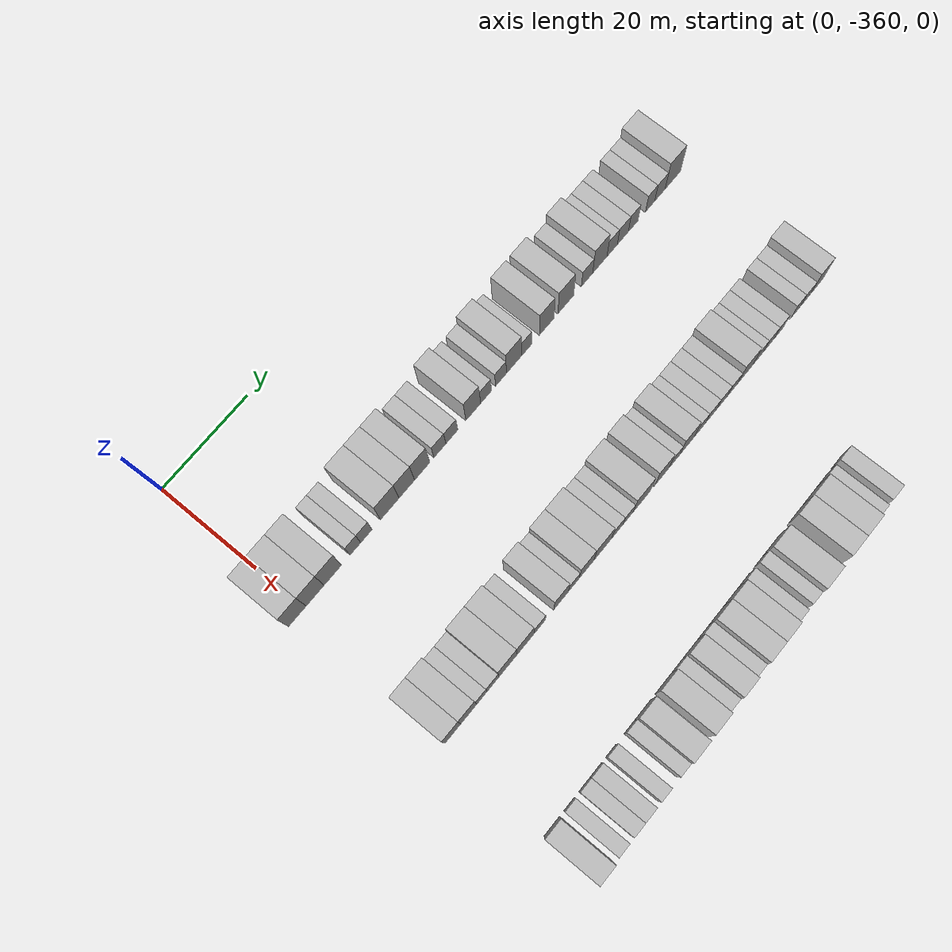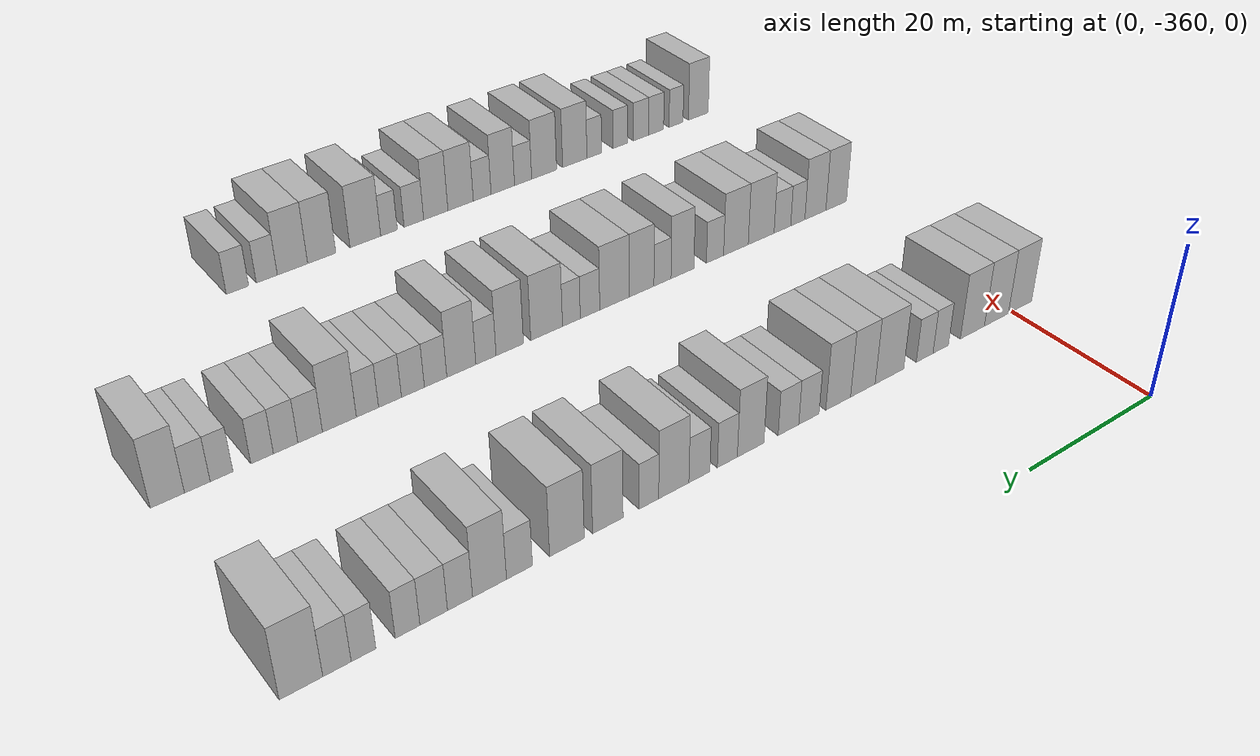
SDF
<sdf version="1.6">
 <world name="default">
  <model name="building_26">
   <static>1</static>
   <pose>25.0000 -361.4323 0 0.000000 0.000000 0.000000</pose>
   <link name="link">
    <pose>0 0 4.50 0 0 0</pose>
    <collision name="collision"><geometry><box><size>10.0000 4.1142 9.0000</size></box></geometry></collision>
    <visual name="visual">
     <cast_shadows>0</cast_shadows>
     <geometry><box><size>10.0000 4.1142 9.0000</size></box></geometry>
     <material>
      <script>
       <uri>model://HANNAS_wall/materials/scripts</uri>
       <uri>model://HANNAS_wall/materials/textures</uri>
       <name>vrc/HANNAS_wall</name>
      </script>
     </material>
    </visual>
   </link>
  </model>
  <model name="building_27">
   <static>1</static>
   <pose>25.0000 -357.2893 0 0.000000 0.000000 0.000000</pose>
   <link name="link">
    <pose>0 0 4.50 0 0 0</pose>
    <collision name="collision"><geometry><box><size>10.0000 4.1719 9.0000</size></box></geometry></collision>
    <visual name="visual">
     <cast_shadows>0</cast_shadows>
     <geometry><box><size>10.0000 4.1719 9.0000</size></box></geometry>
     <material>
      <script>
       <uri>model://HANNAS_wall/materials/scripts</uri>
       <uri>model://HANNAS_wall/materials/textures</uri>
       <name>vrc/HANNAS_wall</name>
      </script>
     </material>
    </visual>
   </link>
  </model>
  <model name="building_28">
   <static>1</static>
   <pose>25.0000 -353.1575 0 0.000000 0.000000 0.000000</pose>
   <link name="link">
    <pose>0 0 4.50 0 0 0</pose>
    <collision name="collision"><geometry><box><size>10.0000 4.0917 9.0000</size></box></geometry></collision>
    <visual name="visual">
     <cast_shadows>0</cast_shadows>
     <geometry><box><size>10.0000 4.0917 9.0000</size></box></geometry>
     <material>
      <script>
       <uri>model://HANNAS_wall/materials/scripts</uri>
       <uri>model://HANNAS_wall/materials/textures</uri>
       <name>vrc/HANNAS_wall</name>
      </script>
     </material>
    </visual>
   </link>
  </model>
  <model name="building_29">
   <static>1</static>
   <pose>25.0000 -347.8444 0 0.000000 0.000000 0.000000</pose>
   <link name="link">
    <pose>0 0 3.00 0 0 0</pose>
    <collision name="collision"><geometry><box><size>10.0000 2.5344 6.0000</size></box></geometry></collision>
    <visual name="visual">
     <cast_shadows>0</cast_shadows>
     <geometry><box><size>10.0000 2.5344 6.0000</size></box></geometry>
     <material>
      <script>
       <uri>model://HANNAS_wall/materials/scripts</uri>
       <uri>model://HANNAS_wall/materials/textures</uri>
       <name>vrc/HANNAS_wall</name>
      </script>
     </material>
    </visual>
   </link>
  </model>
  <model name="building_30">
   <static>1</static>
   <pose>25.0000 -345.2162 0 0.000000 0.000000 0.000000</pose>
   <link name="link">
    <pose>0 0 3.00 0 0 0</pose>
    <collision name="collision"><geometry><box><size>10.0000 2.7220 6.0000</size></box></geometry></collision>
    <visual name="visual">
     <cast_shadows>0</cast_shadows>
     <geometry><box><size>10.0000 2.7220 6.0000</size></box></geometry>
     <material>
      <script>
       <uri>model://HANNAS_wall/materials/scripts</uri>
       <uri>model://HANNAS_wall/materials/textures</uri>
       <name>vrc/HANNAS_wall</name>
      </script>
     </material>
    </visual>
   </link>
  </model>
  <model name="building_31">
   <static>1</static>
   <pose>25.0000 -339.6061 0 0.000000 0.000000 0.000000</pose>
   <link name="link">
    <pose>0 0 4.50 0 0 0</pose>
    <collision name="collision"><geometry><box><size>10.0000 4.4983 9.0000</size></box></geometry></collision>
    <visual name="visual">
     <cast_shadows>0</cast_shadows>
     <geometry><box><size>10.0000 4.4983 9.0000</size></box></geometry>
     <material>
      <script>
       <uri>model://HANNAS_wall/materials/scripts</uri>
       <uri>model://HANNAS_wall/materials/textures</uri>
       <name>vrc/HANNAS_wall</name>
      </script>
     </material>
    </visual>
   </link>
  </model>
  <model name="building_32">
   <static>1</static>
   <pose>25.0000 -335.4722 0 0.000000 0.000000 0.000000</pose>
   <link name="link">
    <pose>0 0 4.50 0 0 0</pose>
    <collision name="collision"><geometry><box><size>10.0000 3.7696 9.0000</size></box></geometry></collision>
    <visual name="visual">
     <cast_shadows>0</cast_shadows>
     <geometry><box><size>10.0000 3.7696 9.0000</size></box></geometry>
     <material>
      <script>
       <uri>model://HANNAS_wall/materials/scripts</uri>
       <uri>model://HANNAS_wall/materials/textures</uri>
       <name>vrc/HANNAS_wall</name>
      </script>
     </material>
    </visual>
   </link>
  </model>
  <model name="building_33">
   <static>1</static>
   <pose>25.0000 -331.7244 0 0.000000 0.000000 0.000000</pose>
   <link name="link">
    <pose>0 0 4.50 0 0 0</pose>
    <collision name="collision"><geometry><box><size>10.0000 3.7260 9.0000</size></box></geometry></collision>
    <visual name="visual">
     <cast_shadows>0</cast_shadows>
     <geometry><box><size>10.0000 3.7260 9.0000</size></box></geometry>
     <material>
      <script>
       <uri>model://HANNAS_wall/materials/scripts</uri>
       <uri>model://HANNAS_wall/materials/textures</uri>
       <name>vrc/HANNAS_wall</name>
      </script>
     </material>
    </visual>
   </link>
  </model>
  <model name="building_34">
   <static>1</static>
   <pose>25.0000 -327.3848 0 0.000000 0.000000 0.000000</pose>
   <link name="link">
    <pose>0 0 3.00 0 0 0</pose>
    <collision name="collision"><geometry><box><size>10.0000 2.9531 6.0000</size></box></geometry></collision>
    <visual name="visual">
     <cast_shadows>0</cast_shadows>
     <geometry><box><size>10.0000 2.9531 6.0000</size></box></geometry>
     <material>
      <script>
       <uri>model://HANNAS_wall/materials/scripts</uri>
       <uri>model://HANNAS_wall/materials/textures</uri>
       <name>vrc/HANNAS_wall</name>
      </script>
     </material>
    </visual>
   </link>
  </model>
  <model name="building_35">
   <static>1</static>
   <pose>25.0000 -324.4236 0 0.000000 0.000000 0.000000</pose>
   <link name="link">
    <pose>0 0 3.00 0 0 0</pose>
    <collision name="collision"><geometry><box><size>10.0000 2.9694 6.0000</size></box></geometry></collision>
    <visual name="visual">
     <cast_shadows>0</cast_shadows>
     <geometry><box><size>10.0000 2.9694 6.0000</size></box></geometry>
     <material>
      <script>
       <uri>model://HANNAS_wall/materials/scripts</uri>
       <uri>model://HANNAS_wall/materials/textures</uri>
       <name>vrc/HANNAS_wall</name>
      </script>
     </material>
    </visual>
   </link>
  </model>
  <model name="building_36">
   <static>1</static>
   <pose>25.0000 -319.0870 0 0.000000 0.000000 0.000000</pose>
   <link name="link">
    <pose>0 0 4.50 0 0 0</pose>
    <collision name="collision"><geometry><box><size>10.0000 3.7037 9.0000</size></box></geometry></collision>
    <visual name="visual">
     <cast_shadows>0</cast_shadows>
     <geometry><box><size>10.0000 3.7037 9.0000</size></box></geometry>
     <material>
      <script>
       <uri>model://HANNAS_wall/materials/scripts</uri>
       <uri>model://HANNAS_wall/materials/textures</uri>
       <name>vrc/HANNAS_wall</name>
      </script>
     </material>
    </visual>
   </link>
  </model>
  <model name="building_37">
   <static>1</static>
   <pose>25.0000 -315.8735 0 0.000000 0.000000 0.000000</pose>
   <link name="link">
    <pose>0 0 3.00 0 0 0</pose>
    <collision name="collision"><geometry><box><size>10.0000 2.7234 6.0000</size></box></geometry></collision>
    <visual name="visual">
     <cast_shadows>0</cast_shadows>
     <geometry><box><size>10.0000 2.7234 6.0000</size></box></geometry>
     <material>
      <script>
       <uri>model://HANNAS_wall/materials/scripts</uri>
       <uri>model://HANNAS_wall/materials/textures</uri>
       <name>vrc/HANNAS_wall</name>
      </script>
     </material>
    </visual>
   </link>
  </model>
  <model name="building_38">
   <static>1</static>
   <pose>25.0000 -312.1165 0 0.000000 0.000000 0.000000</pose>
   <link name="link">
    <pose>0 0 3.00 0 0 0</pose>
    <collision name="collision"><geometry><box><size>10.0000 2.7905 6.0000</size></box></geometry></collision>
    <visual name="visual">
     <cast_shadows>0</cast_shadows>
     <geometry><box><size>10.0000 2.7905 6.0000</size></box></geometry>
     <material>
      <script>
       <uri>model://HANNAS_wall/materials/scripts</uri>
       <uri>model://HANNAS_wall/materials/textures</uri>
       <name>vrc/HANNAS_wall</name>
      </script>
     </material>
    </visual>
   </link>
  </model>
  <model name="building_39">
   <static>1</static>
   <pose>25.0000 -308.7579 0 0.000000 0.000000 0.000000</pose>
   <link name="link">
    <pose>0 0 4.50 0 0 0</pose>
    <collision name="collision"><geometry><box><size>10.0000 3.9267 9.0000</size></box></geometry></collision>
    <visual name="visual">
     <cast_shadows>0</cast_shadows>
     <geometry><box><size>10.0000 3.9267 9.0000</size></box></geometry>
     <material>
      <script>
       <uri>model://HANNAS_wall/materials/scripts</uri>
       <uri>model://HANNAS_wall/materials/textures</uri>
       <name>vrc/HANNAS_wall</name>
      </script>
     </material>
    </visual>
   </link>
  </model>
  <model name="building_40">
   <static>1</static>
   <pose>25.0000 -305.5402 0 0.000000 0.000000 0.000000</pose>
   <link name="link">
    <pose>0 0 3.00 0 0 0</pose>
    <collision name="collision"><geometry><box><size>10.0000 2.5087 6.0000</size></box></geometry></collision>
    <visual name="visual">
     <cast_shadows>0</cast_shadows>
     <geometry><box><size>10.0000 2.5087 6.0000</size></box></geometry>
     <material>
      <script>
       <uri>model://HANNAS_wall/materials/scripts</uri>
       <uri>model://HANNAS_wall/materials/textures</uri>
       <name>vrc/HANNAS_wall</name>
      </script>
     </material>
    </visual>
   </link>
  </model>
  <model name="building_41">
   <static>1</static>
   <pose>25.0000 -300.4034 0 0.000000 0.000000 0.000000</pose>
   <link name="link">
    <pose>0 0 4.50 0 0 0</pose>
    <collision name="collision"><geometry><box><size>10.0000 3.7648 9.0000</size></box></geometry></collision>
    <visual name="visual">
     <cast_shadows>0</cast_shadows>
     <geometry><box><size>10.0000 3.7648 9.0000</size></box></geometry>
     <material>
      <script>
       <uri>model://HANNAS_wall/materials/scripts</uri>
       <uri>model://HANNAS_wall/materials/textures</uri>
       <name>vrc/HANNAS_wall</name>
      </script>
     </material>
    </visual>
   </link>
  </model>
  <model name="building_42">
   <static>1</static>
   <pose>25.0000 -295.4525 0 0.000000 0.000000 0.000000</pose>
   <link name="link">
    <pose>0 0 4.50 0 0 0</pose>
    <collision name="collision"><geometry><box><size>10.0000 4.1371 9.0000</size></box></geometry></collision>
    <visual name="visual">
     <cast_shadows>0</cast_shadows>
     <geometry><box><size>10.0000 4.1371 9.0000</size></box></geometry>
     <material>
      <script>
       <uri>model://HANNAS_wall/materials/scripts</uri>
       <uri>model://HANNAS_wall/materials/textures</uri>
       <name>vrc/HANNAS_wall</name>
      </script>
     </material>
    </visual>
   </link>
  </model>
  <model name="building_43">
   <static>1</static>
   <pose>25.0000 -289.8964 0 0.000000 0.000000 0.000000</pose>
   <link name="link">
    <pose>0 0 3.00 0 0 0</pose>
    <collision name="collision"><geometry><box><size>10.0000 2.9751 6.0000</size></box></geometry></collision>
    <visual name="visual">
     <cast_shadows>0</cast_shadows>
     <geometry><box><size>10.0000 2.9751 6.0000</size></box></geometry>
     <material>
      <script>
       <uri>model://HANNAS_wall/materials/scripts</uri>
       <uri>model://HANNAS_wall/materials/textures</uri>
       <name>vrc/HANNAS_wall</name>
      </script>
     </material>
    </visual>
   </link>
  </model>
  <model name="building_44">
   <static>1</static>
   <pose>25.0000 -286.5066 0 0.000000 0.000000 0.000000</pose>
   <link name="link">
    <pose>0 0 4.50 0 0 0</pose>
    <collision name="collision"><geometry><box><size>10.0000 3.8045 9.0000</size></box></geometry></collision>
    <visual name="visual">
     <cast_shadows>0</cast_shadows>
     <geometry><box><size>10.0000 3.8045 9.0000</size></box></geometry>
     <material>
      <script>
       <uri>model://HANNAS_wall/materials/scripts</uri>
       <uri>model://HANNAS_wall/materials/textures</uri>
       <name>vrc/HANNAS_wall</name>
      </script>
     </material>
    </visual>
   </link>
  </model>
  <model name="building_45">
   <static>1</static>
   <pose>25.0000 -283.2274 0 0.000000 0.000000 0.000000</pose>
   <link name="link">
    <pose>0 0 3.00 0 0 0</pose>
    <collision name="collision"><geometry><box><size>10.0000 2.7539 6.0000</size></box></geometry></collision>
    <visual name="visual">
     <cast_shadows>0</cast_shadows>
     <geometry><box><size>10.0000 2.7539 6.0000</size></box></geometry>
     <material>
      <script>
       <uri>model://HANNAS_wall/materials/scripts</uri>
       <uri>model://HANNAS_wall/materials/textures</uri>
       <name>vrc/HANNAS_wall</name>
      </script>
     </material>
    </visual>
   </link>
  </model>
  <model name="building_46">
   <static>1</static>
   <pose>25.0000 -280.3685 0 0.000000 0.000000 0.000000</pose>
   <link name="link">
    <pose>0 0 3.00 0 0 0</pose>
    <collision name="collision"><geometry><box><size>10.0000 2.9638 6.0000</size></box></geometry></collision>
    <visual name="visual">
     <cast_shadows>0</cast_shadows>
     <geometry><box><size>10.0000 2.9638 6.0000</size></box></geometry>
     <material>
      <script>
       <uri>model://HANNAS_wall/materials/scripts</uri>
       <uri>model://HANNAS_wall/materials/textures</uri>
       <name>vrc/HANNAS_wall</name>
      </script>
     </material>
    </visual>
   </link>
  </model>
  <model name="building_47">
   <static>1</static>
   <pose>25.0000 -277.5819 0 0.000000 0.000000 0.000000</pose>
   <link name="link">
    <pose>0 0 3.00 0 0 0</pose>
    <collision name="collision"><geometry><box><size>10.0000 2.6095 6.0000</size></box></geometry></collision>
    <visual name="visual">
     <cast_shadows>0</cast_shadows>
     <geometry><box><size>10.0000 2.6095 6.0000</size></box></geometry>
     <material>
      <script>
       <uri>model://HANNAS_wall/materials/scripts</uri>
       <uri>model://HANNAS_wall/materials/textures</uri>
       <name>vrc/HANNAS_wall</name>
      </script>
     </material>
    </visual>
   </link>
  </model>
  <model name="building_48">
   <static>1</static>
   <pose>25.0000 -273.0183 0 0.000000 0.000000 0.000000</pose>
   <link name="link">
    <pose>0 0 3.00 0 0 0</pose>
    <collision name="collision"><geometry><box><size>10.0000 2.5177 6.0000</size></box></geometry></collision>
    <visual name="visual">
     <cast_shadows>0</cast_shadows>
     <geometry><box><size>10.0000 2.5177 6.0000</size></box></geometry>
     <material>
      <script>
       <uri>model://HANNAS_wall/materials/scripts</uri>
       <uri>model://HANNAS_wall/materials/textures</uri>
       <name>vrc/HANNAS_wall</name>
      </script>
     </material>
    </visual>
   </link>
  </model>
  <model name="building_49">
   <static>1</static>
   <pose>25.0000 -270.3410 0 0.000000 0.000000 0.000000</pose>
   <link name="link">
    <pose>0 0 3.00 0 0 0</pose>
    <collision name="collision"><geometry><box><size>10.0000 2.8370 6.0000</size></box></geometry></collision>
    <visual name="visual">
     <cast_shadows>0</cast_shadows>
     <geometry><box><size>10.0000 2.8370 6.0000</size></box></geometry>
     <material>
      <script>
       <uri>model://HANNAS_wall/materials/scripts</uri>
       <uri>model://HANNAS_wall/materials/textures</uri>
       <name>vrc/HANNAS_wall</name>
      </script>
     </material>
    </visual>
   </link>
  </model>
  <model name="building_50">
   <static>1</static>
   <pose>25.0000 -266.7920 0 0.000000 0.000000 0.000000</pose>
   <link name="link">
    <pose>0 0 4.50 0 0 0</pose>
    <collision name="collision"><geometry><box><size>10.0000 4.2609 9.0000</size></box></geometry></collision>
    <visual name="visual">
     <cast_shadows>0</cast_shadows>
     <geometry><box><size>10.0000 4.2609 9.0000</size></box></geometry>
     <material>
      <script>
       <uri>model://HANNAS_wall/materials/scripts</uri>
       <uri>model://HANNAS_wall/materials/textures</uri>
       <name>vrc/HANNAS_wall</name>
      </script>
     </material>
    </visual>
   </link>
  </model>
  <model name="building_256">
   <static>1</static>
   <pose>55.0000 -359.7815 0 0.000000 0.000000 0.000000</pose>
   <link name="link">
    <pose>0 0 4.50 0 0 0</pose>
    <collision name="collision"><geometry><box><size>10.0000 3.6991 9.0000</size></box></geometry></collision>
    <visual name="visual">
     <cast_shadows>0</cast_shadows>
     <geometry><box><size>10.0000 3.6991 9.0000</size></box></geometry>
     <material>
      <script>
       <uri>model://HANNAS_wall/materials/scripts</uri>
       <uri>model://HANNAS_wall/materials/textures</uri>
       <name>vrc/HANNAS_wall</name>
      </script>
     </material>
    </visual>
   </link>
  </model>
  <model name="building_257">
   <static>1</static>
   <pose>55.0000 -356.0759 0 0.000000 0.000000 0.000000</pose>
   <link name="link">
    <pose>0 0 4.50 0 0 0</pose>
    <collision name="collision"><geometry><box><size>10.0000 3.7122 9.0000</size></box></geometry></collision>
    <visual name="visual">
     <cast_shadows>0</cast_shadows>
     <geometry><box><size>10.0000 3.7122 9.0000</size></box></geometry>
     <material>
      <script>
       <uri>model://HANNAS_wall/materials/scripts</uri>
       <uri>model://HANNAS_wall/materials/textures</uri>
       <name>vrc/HANNAS_wall</name>
      </script>
     </material>
    </visual>
   </link>
  </model>
  <model name="building_258">
   <static>1</static>
   <pose>55.0000 -352.9854 0 0.000000 0.000000 0.000000</pose>
   <link name="link">
    <pose>0 0 3.00 0 0 0</pose>
    <collision name="collision"><geometry><box><size>10.0000 2.4688 6.0000</size></box></geometry></collision>
    <visual name="visual">
     <cast_shadows>0</cast_shadows>
     <geometry><box><size>10.0000 2.4688 6.0000</size></box></geometry>
     <material>
      <script>
       <uri>model://HANNAS_wall/materials/scripts</uri>
       <uri>model://HANNAS_wall/materials/textures</uri>
       <name>vrc/HANNAS_wall</name>
      </script>
     </material>
    </visual>
   </link>
  </model>
  <model name="building_259">
   <static>1</static>
   <pose>55.0000 -350.3248 0 0.000000 0.000000 0.000000</pose>
   <link name="link">
    <pose>0 0 3.00 0 0 0</pose>
    <collision name="collision"><geometry><box><size>10.0000 2.8525 6.0000</size></box></geometry></collision>
    <visual name="visual">
     <cast_shadows>0</cast_shadows>
     <geometry><box><size>10.0000 2.8525 6.0000</size></box></geometry>
     <material>
      <script>
       <uri>model://HANNAS_wall/materials/scripts</uri>
       <uri>model://HANNAS_wall/materials/textures</uri>
       <name>vrc/HANNAS_wall</name>
      </script>
     </material>
    </visual>
   </link>
  </model>
  <model name="building_260">
   <static>1</static>
   <pose>55.0000 -346.7227 0 0.000000 0.000000 0.000000</pose>
   <link name="link">
    <pose>0 0 4.50 0 0 0</pose>
    <collision name="collision"><geometry><box><size>10.0000 4.3516 9.0000</size></box></geometry></collision>
    <visual name="visual">
     <cast_shadows>0</cast_shadows>
     <geometry><box><size>10.0000 4.3516 9.0000</size></box></geometry>
     <material>
      <script>
       <uri>model://HANNAS_wall/materials/scripts</uri>
       <uri>model://HANNAS_wall/materials/textures</uri>
       <name>vrc/HANNAS_wall</name>
      </script>
     </material>
    </visual>
   </link>
  </model>
  <model name="building_261">
   <static>1</static>
   <pose>55.0000 -342.5114 0 0.000000 0.000000 0.000000</pose>
   <link name="link">
    <pose>0 0 4.50 0 0 0</pose>
    <collision name="collision"><geometry><box><size>10.0000 4.0711 9.0000</size></box></geometry></collision>
    <visual name="visual">
     <cast_shadows>0</cast_shadows>
     <geometry><box><size>10.0000 4.0711 9.0000</size></box></geometry>
     <material>
      <script>
       <uri>model://HANNAS_wall/materials/scripts</uri>
       <uri>model://HANNAS_wall/materials/textures</uri>
       <name>vrc/HANNAS_wall</name>
      </script>
     </material>
    </visual>
   </link>
  </model>
  <model name="building_262">
   <static>1</static>
   <pose>55.0000 -339.0830 0 0.000000 0.000000 0.000000</pose>
   <link name="link">
    <pose>0 0 3.00 0 0 0</pose>
    <collision name="collision"><geometry><box><size>10.0000 2.7856 6.0000</size></box></geometry></collision>
    <visual name="visual">
     <cast_shadows>0</cast_shadows>
     <geometry><box><size>10.0000 2.7856 6.0000</size></box></geometry>
     <material>
      <script>
       <uri>model://HANNAS_wall/materials/scripts</uri>
       <uri>model://HANNAS_wall/materials/textures</uri>
       <name>vrc/HANNAS_wall</name>
      </script>
     </material>
    </visual>
   </link>
  </model>
  <model name="building_263">
   <static>1</static>
   <pose>55.0000 -333.8878 0 0.000000 0.000000 0.000000</pose>
   <link name="link">
    <pose>0 0 4.50 0 0 0</pose>
    <collision name="collision"><geometry><box><size>10.0000 3.6047 9.0000</size></box></geometry></collision>
    <visual name="visual">
     <cast_shadows>0</cast_shadows>
     <geometry><box><size>10.0000 3.6047 9.0000</size></box></geometry>
     <material>
      <script>
       <uri>model://HANNAS_wall/materials/scripts</uri>
       <uri>model://HANNAS_wall/materials/textures</uri>
       <name>vrc/HANNAS_wall</name>
      </script>
     </material>
    </visual>
   </link>
  </model>
  <model name="building_264">
   <static>1</static>
   <pose>55.0000 -330.7601 0 0.000000 0.000000 0.000000</pose>
   <link name="link">
    <pose>0 0 3.00 0 0 0</pose>
    <collision name="collision"><geometry><box><size>10.0000 2.6507 6.0000</size></box></geometry></collision>
    <visual name="visual">
     <cast_shadows>0</cast_shadows>
     <geometry><box><size>10.0000 2.6507 6.0000</size></box></geometry>
     <material>
      <script>
       <uri>model://HANNAS_wall/materials/scripts</uri>
       <uri>model://HANNAS_wall/materials/textures</uri>
       <name>vrc/HANNAS_wall</name>
      </script>
     </material>
    </visual>
   </link>
  </model>
  <model name="building_265">
   <static>1</static>
   <pose>55.0000 -327.5676 0 0.000000 0.000000 0.000000</pose>
   <link name="link">
    <pose>0 0 4.50 0 0 0</pose>
    <collision name="collision"><geometry><box><size>10.0000 3.7342 9.0000</size></box></geometry></collision>
    <visual name="visual">
     <cast_shadows>0</cast_shadows>
     <geometry><box><size>10.0000 3.7342 9.0000</size></box></geometry>
     <material>
      <script>
       <uri>model://HANNAS_wall/materials/scripts</uri>
       <uri>model://HANNAS_wall/materials/textures</uri>
       <name>vrc/HANNAS_wall</name>
      </script>
     </material>
    </visual>
   </link>
  </model>
  <model name="building_266">
   <static>1</static>
   <pose>55.0000 -323.4930 0 0.000000 0.000000 0.000000</pose>
   <link name="link">
    <pose>0 0 4.50 0 0 0</pose>
    <collision name="collision"><geometry><box><size>10.0000 4.4150 9.0000</size></box></geometry></collision>
    <visual name="visual">
     <cast_shadows>0</cast_shadows>
     <geometry><box><size>10.0000 4.4150 9.0000</size></box></geometry>
     <material>
      <script>
       <uri>model://HANNAS_wall/materials/scripts</uri>
       <uri>model://HANNAS_wall/materials/textures</uri>
       <name>vrc/HANNAS_wall</name>
      </script>
     </material>
    </visual>
   </link>
  </model>
  <model name="building_267">
   <static>1</static>
   <pose>55.0000 -319.8619 0 0.000000 0.000000 0.000000</pose>
   <link name="link">
    <pose>0 0 3.00 0 0 0</pose>
    <collision name="collision"><geometry><box><size>10.0000 2.8472 6.0000</size></box></geometry></collision>
    <visual name="visual">
     <cast_shadows>0</cast_shadows>
     <geometry><box><size>10.0000 2.8472 6.0000</size></box></geometry>
     <material>
      <script>
       <uri>model://HANNAS_wall/materials/scripts</uri>
       <uri>model://HANNAS_wall/materials/textures</uri>
       <name>vrc/HANNAS_wall</name>
      </script>
     </material>
    </visual>
   </link>
  </model>
  <model name="building_268">
   <static>1</static>
   <pose>55.0000 -317.1630 0 0.000000 0.000000 0.000000</pose>
   <link name="link">
    <pose>0 0 3.00 0 0 0</pose>
    <collision name="collision"><geometry><box><size>10.0000 2.5506 6.0000</size></box></geometry></collision>
    <visual name="visual">
     <cast_shadows>0</cast_shadows>
     <geometry><box><size>10.0000 2.5506 6.0000</size></box></geometry>
     <material>
      <script>
       <uri>model://HANNAS_wall/materials/scripts</uri>
       <uri>model://HANNAS_wall/materials/textures</uri>
       <name>vrc/HANNAS_wall</name>
      </script>
     </material>
    </visual>
   </link>
  </model>
  <model name="building_269">
   <static>1</static>
   <pose>55.0000 -313.6440 0 0.000000 0.000000 0.000000</pose>
   <link name="link">
    <pose>0 0 4.50 0 0 0</pose>
    <collision name="collision"><geometry><box><size>10.0000 4.4873 9.0000</size></box></geometry></collision>
    <visual name="visual">
     <cast_shadows>0</cast_shadows>
     <geometry><box><size>10.0000 4.4873 9.0000</size></box></geometry>
     <material>
      <script>
       <uri>model://HANNAS_wall/materials/scripts</uri>
       <uri>model://HANNAS_wall/materials/textures</uri>
       <name>vrc/HANNAS_wall</name>
      </script>
     </material>
    </visual>
   </link>
  </model>
  <model name="building_270">
   <static>1</static>
   <pose>55.0000 -308.5202 0 0.000000 0.000000 0.000000</pose>
   <link name="link">
    <pose>0 0 4.50 0 0 0</pose>
    <collision name="collision"><geometry><box><size>10.0000 3.7604 9.0000</size></box></geometry></collision>
    <visual name="visual">
     <cast_shadows>0</cast_shadows>
     <geometry><box><size>10.0000 3.7604 9.0000</size></box></geometry>
     <material>
      <script>
       <uri>model://HANNAS_wall/materials/scripts</uri>
       <uri>model://HANNAS_wall/materials/textures</uri>
       <name>vrc/HANNAS_wall</name>
      </script>
     </material>
    </visual>
   </link>
  </model>
  <model name="building_271">
   <static>1</static>
   <pose>55.0000 -305.2789 0 0.000000 0.000000 0.000000</pose>
   <link name="link">
    <pose>0 0 3.00 0 0 0</pose>
    <collision name="collision"><geometry><box><size>10.0000 2.7223 6.0000</size></box></geometry></collision>
    <visual name="visual">
     <cast_shadows>0</cast_shadows>
     <geometry><box><size>10.0000 2.7223 6.0000</size></box></geometry>
     <material>
      <script>
       <uri>model://HANNAS_wall/materials/scripts</uri>
       <uri>model://HANNAS_wall/materials/textures</uri>
       <name>vrc/HANNAS_wall</name>
      </script>
     </material>
    </visual>
   </link>
  </model>
  <model name="building_272">
   <static>1</static>
   <pose>55.0000 -302.0019 0 0.000000 0.000000 0.000000</pose>
   <link name="link">
    <pose>0 0 4.50 0 0 0</pose>
    <collision name="collision"><geometry><box><size>10.0000 3.8317 9.0000</size></box></geometry></collision>
    <visual name="visual">
     <cast_shadows>0</cast_shadows>
     <geometry><box><size>10.0000 3.8317 9.0000</size></box></geometry>
     <material>
      <script>
       <uri>model://HANNAS_wall/materials/scripts</uri>
       <uri>model://HANNAS_wall/materials/textures</uri>
       <name>vrc/HANNAS_wall</name>
      </script>
     </material>
    </visual>
   </link>
  </model>
  <model name="building_273">
   <static>1</static>
   <pose>55.0000 -298.6324 0 0.000000 0.000000 0.000000</pose>
   <link name="link">
    <pose>0 0 3.00 0 0 0</pose>
    <collision name="collision"><geometry><box><size>10.0000 2.9071 6.0000</size></box></geometry></collision>
    <visual name="visual">
     <cast_shadows>0</cast_shadows>
     <geometry><box><size>10.0000 2.9071 6.0000</size></box></geometry>
     <material>
      <script>
       <uri>model://HANNAS_wall/materials/scripts</uri>
       <uri>model://HANNAS_wall/materials/textures</uri>
       <name>vrc/HANNAS_wall</name>
      </script>
     </material>
    </visual>
   </link>
  </model>
  <model name="building_274">
   <static>1</static>
   <pose>55.0000 -295.7208 0 0.000000 0.000000 0.000000</pose>
   <link name="link">
    <pose>0 0 3.00 0 0 0</pose>
    <collision name="collision"><geometry><box><size>10.0000 2.9162 6.0000</size></box></geometry></collision>
    <visual name="visual">
     <cast_shadows>0</cast_shadows>
     <geometry><box><size>10.0000 2.9162 6.0000</size></box></geometry>
     <material>
      <script>
       <uri>model://HANNAS_wall/materials/scripts</uri>
       <uri>model://HANNAS_wall/materials/textures</uri>
       <name>vrc/HANNAS_wall</name>
      </script>
     </material>
    </visual>
   </link>
  </model>
  <model name="building_275">
   <static>1</static>
   <pose>55.0000 -292.8305 0 0.000000 0.000000 0.000000</pose>
   <link name="link">
    <pose>0 0 3.00 0 0 0</pose>
    <collision name="collision"><geometry><box><size>10.0000 2.8644 6.0000</size></box></geometry></collision>
    <visual name="visual">
     <cast_shadows>0</cast_shadows>
     <geometry><box><size>10.0000 2.8644 6.0000</size></box></geometry>
     <material>
      <script>
       <uri>model://HANNAS_wall/materials/scripts</uri>
       <uri>model://HANNAS_wall/materials/textures</uri>
       <name>vrc/HANNAS_wall</name>
      </script>
     </material>
    </visual>
   </link>
  </model>
  <model name="building_276">
   <static>1</static>
   <pose>55.0000 -290.0370 0 0.000000 0.000000 0.000000</pose>
   <link name="link">
    <pose>0 0 3.00 0 0 0</pose>
    <collision name="collision"><geometry><box><size>10.0000 2.7227 6.0000</size></box></geometry></collision>
    <visual name="visual">
     <cast_shadows>0</cast_shadows>
     <geometry><box><size>10.0000 2.7227 6.0000</size></box></geometry>
     <material>
      <script>
       <uri>model://HANNAS_wall/materials/scripts</uri>
       <uri>model://HANNAS_wall/materials/textures</uri>
       <name>vrc/HANNAS_wall</name>
      </script>
     </material>
    </visual>
   </link>
  </model>
  <model name="building_277">
   <static>1</static>
   <pose>55.0000 -286.6306 0 0.000000 0.000000 0.000000</pose>
   <link name="link">
    <pose>0 0 4.50 0 0 0</pose>
    <collision name="collision"><geometry><box><size>10.0000 4.0900 9.0000</size></box></geometry></collision>
    <visual name="visual">
     <cast_shadows>0</cast_shadows>
     <geometry><box><size>10.0000 4.0900 9.0000</size></box></geometry>
     <material>
      <script>
       <uri>model://HANNAS_wall/materials/scripts</uri>
       <uri>model://HANNAS_wall/materials/textures</uri>
       <name>vrc/HANNAS_wall</name>
      </script>
     </material>
    </visual>
   </link>
  </model>
  <model name="building_278">
   <static>1</static>
   <pose>55.0000 -283.1366 0 0.000000 0.000000 0.000000</pose>
   <link name="link">
    <pose>0 0 3.00 0 0 0</pose>
    <collision name="collision"><geometry><box><size>10.0000 2.8980 6.0000</size></box></geometry></collision>
    <visual name="visual">
     <cast_shadows>0</cast_shadows>
     <geometry><box><size>10.0000 2.8980 6.0000</size></box></geometry>
     <material>
      <script>
       <uri>model://HANNAS_wall/materials/scripts</uri>
       <uri>model://HANNAS_wall/materials/textures</uri>
       <name>vrc/HANNAS_wall</name>
      </script>
     </material>
    </visual>
   </link>
  </model>
  <model name="building_279">
   <static>1</static>
   <pose>55.0000 -280.2695 0 0.000000 0.000000 0.000000</pose>
   <link name="link">
    <pose>0 0 3.00 0 0 0</pose>
    <collision name="collision"><geometry><box><size>10.0000 2.8363 6.0000</size></box></geometry></collision>
    <visual name="visual">
     <cast_shadows>0</cast_shadows>
     <geometry><box><size>10.0000 2.8363 6.0000</size></box></geometry>
     <material>
      <script>
       <uri>model://HANNAS_wall/materials/scripts</uri>
       <uri>model://HANNAS_wall/materials/textures</uri>
       <name>vrc/HANNAS_wall</name>
      </script>
     </material>
    </visual>
   </link>
  </model>
  <model name="building_280">
   <static>1</static>
   <pose>55.0000 -277.5631 0 0.000000 0.000000 0.000000</pose>
   <link name="link">
    <pose>0 0 3.00 0 0 0</pose>
    <collision name="collision"><geometry><box><size>10.0000 2.5765 6.0000</size></box></geometry></collision>
    <visual name="visual">
     <cast_shadows>0</cast_shadows>
     <geometry><box><size>10.0000 2.5765 6.0000</size></box></geometry>
     <material>
      <script>
       <uri>model://HANNAS_wall/materials/scripts</uri>
       <uri>model://HANNAS_wall/materials/textures</uri>
       <name>vrc/HANNAS_wall</name>
      </script>
     </material>
    </visual>
   </link>
  </model>
  <model name="building_281">
   <static>1</static>
   <pose>55.0000 -273.0149 0 0.000000 0.000000 0.000000</pose>
   <link name="link">
    <pose>0 0 3.00 0 0 0</pose>
    <collision name="collision"><geometry><box><size>10.0000 2.5198 6.0000</size></box></geometry></collision>
    <visual name="visual">
     <cast_shadows>0</cast_shadows>
     <geometry><box><size>10.0000 2.5198 6.0000</size></box></geometry>
     <material>
      <script>
       <uri>model://HANNAS_wall/materials/scripts</uri>
       <uri>model://HANNAS_wall/materials/textures</uri>
       <name>vrc/HANNAS_wall</name>
      </script>
     </material>
    </visual>
   </link>
  </model>
  <model name="building_282">
   <static>1</static>
   <pose>55.0000 -270.3554 0 0.000000 0.000000 0.000000</pose>
   <link name="link">
    <pose>0 0 3.00 0 0 0</pose>
    <collision name="collision"><geometry><box><size>10.0000 2.7992 6.0000</size></box></geometry></collision>
    <visual name="visual">
     <cast_shadows>0</cast_shadows>
     <geometry><box><size>10.0000 2.7992 6.0000</size></box></geometry>
     <material>
      <script>
       <uri>model://HANNAS_wall/materials/scripts</uri>
       <uri>model://HANNAS_wall/materials/textures</uri>
       <name>vrc/HANNAS_wall</name>
      </script>
     </material>
    </visual>
   </link>
  </model>
  <model name="building_283">
   <static>1</static>
   <pose>55.0000 -267.1213 0 0.000000 0.000000 0.000000</pose>
   <link name="link">
    <pose>0 0 4.50 0 0 0</pose>
    <collision name="collision"><geometry><box><size>10.0000 3.6690 9.0000</size></box></geometry></collision>
    <visual name="visual">
     <cast_shadows>0</cast_shadows>
     <geometry><box><size>10.0000 3.6690 9.0000</size></box></geometry>
     <material>
      <script>
       <uri>model://HANNAS_wall/materials/scripts</uri>
       <uri>model://HANNAS_wall/materials/textures</uri>
       <name>vrc/HANNAS_wall</name>
      </script>
     </material>
    </visual>
   </link>
  </model>
  <model name="building_499">
   <static>1</static>
   <pose>85.0000 -360.8232 0 0.000000 0.000000 0.000000</pose>
   <link name="link">
    <pose>0 0 4.50 0 0 0</pose>
    <collision name="collision"><geometry><box><size>10.0000 3.6684 9.0000</size></box></geometry></collision>
    <visual name="visual">
     <cast_shadows>0</cast_shadows>
     <geometry><box><size>10.0000 3.6684 9.0000</size></box></geometry>
     <material>
      <script>
       <uri>model://HANNAS_wall/materials/scripts</uri>
       <uri>model://HANNAS_wall/materials/textures</uri>
       <name>vrc/HANNAS_wall</name>
      </script>
     </material>
    </visual>
   </link>
  </model>
  <model name="building_500">
   <static>1</static>
   <pose>85.0000 -356.7166 0 0.000000 0.000000 0.000000</pose>
   <link name="link">
    <pose>0 0 3.00 0 0 0</pose>
    <collision name="collision"><geometry><box><size>10.0000 2.5449 6.0000</size></box></geometry></collision>
    <visual name="visual">
     <cast_shadows>0</cast_shadows>
     <geometry><box><size>10.0000 2.5449 6.0000</size></box></geometry>
     <material>
      <script>
       <uri>model://HANNAS_wall/materials/scripts</uri>
       <uri>model://HANNAS_wall/materials/textures</uri>
       <name>vrc/HANNAS_wall</name>
      </script>
     </material>
    </visual>
   </link>
  </model>
  <model name="building_501">
   <static>1</static>
   <pose>85.0000 -353.1161 0 0.000000 0.000000 0.000000</pose>
   <link name="link">
    <pose>0 0 3.00 0 0 0</pose>
    <collision name="collision"><geometry><box><size>10.0000 2.6561 6.0000</size></box></geometry></collision>
    <visual name="visual">
     <cast_shadows>0</cast_shadows>
     <geometry><box><size>10.0000 2.6561 6.0000</size></box></geometry>
     <material>
      <script>
       <uri>model://HANNAS_wall/materials/scripts</uri>
       <uri>model://HANNAS_wall/materials/textures</uri>
       <name>vrc/HANNAS_wall</name>
      </script>
     </material>
    </visual>
   </link>
  </model>
  <model name="building_502">
   <static>1</static>
   <pose>85.0000 -350.4083 0 0.000000 0.000000 0.000000</pose>
   <link name="link">
    <pose>0 0 3.00 0 0 0</pose>
    <collision name="collision"><geometry><box><size>10.0000 2.7594 6.0000</size></box></geometry></collision>
    <visual name="visual">
     <cast_shadows>0</cast_shadows>
     <geometry><box><size>10.0000 2.7594 6.0000</size></box></geometry>
     <material>
      <script>
       <uri>model://HANNAS_wall/materials/scripts</uri>
       <uri>model://HANNAS_wall/materials/textures</uri>
       <name>vrc/HANNAS_wall</name>
      </script>
     </material>
    </visual>
   </link>
  </model>
  <model name="building_503">
   <static>1</static>
   <pose>85.0000 -346.7607 0 0.000000 0.000000 0.000000</pose>
   <link name="link">
    <pose>0 0 3.00 0 0 0</pose>
    <collision name="collision"><geometry><box><size>10.0000 2.5358 6.0000</size></box></geometry></collision>
    <visual name="visual">
     <cast_shadows>0</cast_shadows>
     <geometry><box><size>10.0000 2.5358 6.0000</size></box></geometry>
     <material>
      <script>
       <uri>model://HANNAS_wall/materials/scripts</uri>
       <uri>model://HANNAS_wall/materials/textures</uri>
       <name>vrc/HANNAS_wall</name>
      </script>
     </material>
    </visual>
   </link>
  </model>
  <model name="building_504">
   <static>1</static>
   <pose>85.0000 -342.2328 0 0.000000 0.000000 0.000000</pose>
   <link name="link">
    <pose>0 0 3.00 0 0 0</pose>
    <collision name="collision"><geometry><box><size>10.0000 2.5201 6.0000</size></box></geometry></collision>
    <visual name="visual">
     <cast_shadows>0</cast_shadows>
     <geometry><box><size>10.0000 2.5201 6.0000</size></box></geometry>
     <material>
      <script>
       <uri>model://HANNAS_wall/materials/scripts</uri>
       <uri>model://HANNAS_wall/materials/textures</uri>
       <name>vrc/HANNAS_wall</name>
      </script>
     </material>
    </visual>
   </link>
  </model>
  <model name="building_505">
   <static>1</static>
   <pose>85.0000 -338.9239 0 0.000000 0.000000 0.000000</pose>
   <link name="link">
    <pose>0 0 4.50 0 0 0</pose>
    <collision name="collision"><geometry><box><size>10.0000 4.0977 9.0000</size></box></geometry></collision>
    <visual name="visual">
     <cast_shadows>0</cast_shadows>
     <geometry><box><size>10.0000 4.0977 9.0000</size></box></geometry>
     <material>
      <script>
       <uri>model://HANNAS_wall/materials/scripts</uri>
       <uri>model://HANNAS_wall/materials/textures</uri>
       <name>vrc/HANNAS_wall</name>
      </script>
     </material>
    </visual>
   </link>
  </model>
  <model name="building_506">
   <static>1</static>
   <pose>85.0000 -333.8216 0 0.000000 0.000000 0.000000</pose>
   <link name="link">
    <pose>0 0 4.50 0 0 0</pose>
    <collision name="collision"><geometry><box><size>10.0000 4.1069 9.0000</size></box></geometry></collision>
    <visual name="visual">
     <cast_shadows>0</cast_shadows>
     <geometry><box><size>10.0000 4.1069 9.0000</size></box></geometry>
     <material>
      <script>
       <uri>model://HANNAS_wall/materials/scripts</uri>
       <uri>model://HANNAS_wall/materials/textures</uri>
       <name>vrc/HANNAS_wall</name>
      </script>
     </material>
    </visual>
   </link>
  </model>
  <model name="building_507">
   <static>1</static>
   <pose>85.0000 -330.3830 0 0.000000 0.000000 0.000000</pose>
   <link name="link">
    <pose>0 0 3.00 0 0 0</pose>
    <collision name="collision"><geometry><box><size>10.0000 2.7703 6.0000</size></box></geometry></collision>
    <visual name="visual">
     <cast_shadows>0</cast_shadows>
     <geometry><box><size>10.0000 2.7703 6.0000</size></box></geometry>
     <material>
      <script>
       <uri>model://HANNAS_wall/materials/scripts</uri>
       <uri>model://HANNAS_wall/materials/textures</uri>
       <name>vrc/HANNAS_wall</name>
      </script>
     </material>
    </visual>
   </link>
  </model>
  <model name="building_508">
   <static>1</static>
   <pose>85.0000 -327.1311 0 0.000000 0.000000 0.000000</pose>
   <link name="link">
    <pose>0 0 4.50 0 0 0</pose>
    <collision name="collision"><geometry><box><size>10.0000 3.7334 9.0000</size></box></geometry></collision>
    <visual name="visual">
     <cast_shadows>0</cast_shadows>
     <geometry><box><size>10.0000 3.7334 9.0000</size></box></geometry>
     <material>
      <script>
       <uri>model://HANNAS_wall/materials/scripts</uri>
       <uri>model://HANNAS_wall/materials/textures</uri>
       <name>vrc/HANNAS_wall</name>
      </script>
     </material>
    </visual>
   </link>
  </model>
  <model name="building_509">
   <static>1</static>
   <pose>85.0000 -323.8728 0 0.000000 0.000000 0.000000</pose>
   <link name="link">
    <pose>0 0 3.00 0 0 0</pose>
    <collision name="collision"><geometry><box><size>10.0000 2.7832 6.0000</size></box></geometry></collision>
    <visual name="visual">
     <cast_shadows>0</cast_shadows>
     <geometry><box><size>10.0000 2.7832 6.0000</size></box></geometry>
     <material>
      <script>
       <uri>model://HANNAS_wall/materials/scripts</uri>
       <uri>model://HANNAS_wall/materials/textures</uri>
       <name>vrc/HANNAS_wall</name>
      </script>
     </material>
    </visual>
   </link>
  </model>
  <model name="building_510">
   <static>1</static>
   <pose>85.0000 -320.5204 0 0.000000 0.000000 0.000000</pose>
   <link name="link">
    <pose>0 0 4.50 0 0 0</pose>
    <collision name="collision"><geometry><box><size>10.0000 3.9218 9.0000</size></box></geometry></collision>
    <visual name="visual">
     <cast_shadows>0</cast_shadows>
     <geometry><box><size>10.0000 3.9218 9.0000</size></box></geometry>
     <material>
      <script>
       <uri>model://HANNAS_wall/materials/scripts</uri>
       <uri>model://HANNAS_wall/materials/textures</uri>
       <name>vrc/HANNAS_wall</name>
      </script>
     </material>
    </visual>
   </link>
  </model>
  <model name="building_511">
   <static>1</static>
   <pose>85.0000 -316.7253 0 0.000000 0.000000 0.000000</pose>
   <link name="link">
    <pose>0 0 4.50 0 0 0</pose>
    <collision name="collision"><geometry><box><size>10.0000 3.6684 9.0000</size></box></geometry></collision>
    <visual name="visual">
     <cast_shadows>0</cast_shadows>
     <geometry><box><size>10.0000 3.6684 9.0000</size></box></geometry>
     <material>
      <script>
       <uri>model://HANNAS_wall/materials/scripts</uri>
       <uri>model://HANNAS_wall/materials/textures</uri>
       <name>vrc/HANNAS_wall</name>
      </script>
     </material>
    </visual>
   </link>
  </model>
  <model name="building_512">
   <static>1</static>
   <pose>85.0000 -313.4397 0 0.000000 0.000000 0.000000</pose>
   <link name="link">
    <pose>0 0 3.00 0 0 0</pose>
    <collision name="collision"><geometry><box><size>10.0000 2.9027 6.0000</size></box></geometry></collision>
    <visual name="visual">
     <cast_shadows>0</cast_shadows>
     <geometry><box><size>10.0000 2.9027 6.0000</size></box></geometry>
     <material>
      <script>
       <uri>model://HANNAS_wall/materials/scripts</uri>
       <uri>model://HANNAS_wall/materials/textures</uri>
       <name>vrc/HANNAS_wall</name>
      </script>
     </material>
    </visual>
   </link>
  </model>
  <model name="building_513">
   <static>1</static>
   <pose>85.0000 -309.7716 0 0.000000 0.000000 0.000000</pose>
   <link name="link">
    <pose>0 0 3.00 0 0 0</pose>
    <collision name="collision"><geometry><box><size>10.0000 2.4335 6.0000</size></box></geometry></collision>
    <visual name="visual">
     <cast_shadows>0</cast_shadows>
     <geometry><box><size>10.0000 2.4335 6.0000</size></box></geometry>
     <material>
      <script>
       <uri>model://HANNAS_wall/materials/scripts</uri>
       <uri>model://HANNAS_wall/materials/textures</uri>
       <name>vrc/HANNAS_wall</name>
      </script>
     </material>
    </visual>
   </link>
  </model>
  <model name="building_514">
   <static>1</static>
   <pose>85.0000 -306.3522 0 0.000000 0.000000 0.000000</pose>
   <link name="link">
    <pose>0 0 4.50 0 0 0</pose>
    <collision name="collision"><geometry><box><size>10.0000 4.4053 9.0000</size></box></geometry></collision>
    <visual name="visual">
     <cast_shadows>0</cast_shadows>
     <geometry><box><size>10.0000 4.4053 9.0000</size></box></geometry>
     <material>
      <script>
       <uri>model://HANNAS_wall/materials/scripts</uri>
       <uri>model://HANNAS_wall/materials/textures</uri>
       <name>vrc/HANNAS_wall</name>
      </script>
     </material>
    </visual>
   </link>
  </model>
  <model name="building_515">
   <static>1</static>
   <pose>85.0000 -300.1924 0 0.000000 0.000000 0.000000</pose>
   <link name="link">
    <pose>0 0 4.50 0 0 0</pose>
    <collision name="collision"><geometry><box><size>10.0000 3.9144 9.0000</size></box></geometry></collision>
    <visual name="visual">
     <cast_shadows>0</cast_shadows>
     <geometry><box><size>10.0000 3.9144 9.0000</size></box></geometry>
     <material>
      <script>
       <uri>model://HANNAS_wall/materials/scripts</uri>
       <uri>model://HANNAS_wall/materials/textures</uri>
       <name>vrc/HANNAS_wall</name>
      </script>
     </material>
    </visual>
   </link>
  </model>
  <model name="building_516">
   <static>1</static>
   <pose>85.0000 -296.1742 0 0.000000 0.000000 0.000000</pose>
   <link name="link">
    <pose>0 0 4.50 0 0 0</pose>
    <collision name="collision"><geometry><box><size>10.0000 4.1219 9.0000</size></box></geometry></collision>
    <visual name="visual">
     <cast_shadows>0</cast_shadows>
     <geometry><box><size>10.0000 4.1219 9.0000</size></box></geometry>
     <material>
      <script>
       <uri>model://HANNAS_wall/materials/scripts</uri>
       <uri>model://HANNAS_wall/materials/textures</uri>
       <name>vrc/HANNAS_wall</name>
      </script>
     </material>
    </visual>
   </link>
  </model>
  <model name="building_517">
   <static>1</static>
   <pose>85.0000 -292.7037 0 0.000000 0.000000 0.000000</pose>
   <link name="link">
    <pose>0 0 3.00 0 0 0</pose>
    <collision name="collision"><geometry><box><size>10.0000 2.8191 6.0000</size></box></geometry></collision>
    <visual name="visual">
     <cast_shadows>0</cast_shadows>
     <geometry><box><size>10.0000 2.8191 6.0000</size></box></geometry>
     <material>
      <script>
       <uri>model://HANNAS_wall/materials/scripts</uri>
       <uri>model://HANNAS_wall/materials/textures</uri>
       <name>vrc/HANNAS_wall</name>
      </script>
     </material>
    </visual>
   </link>
  </model>
  <model name="building_518">
   <static>1</static>
   <pose>85.0000 -288.8261 0 0.000000 0.000000 0.000000</pose>
   <link name="link">
    <pose>0 0 3.00 0 0 0</pose>
    <collision name="collision"><geometry><box><size>10.0000 2.9362 6.0000</size></box></geometry></collision>
    <visual name="visual">
     <cast_shadows>0</cast_shadows>
     <geometry><box><size>10.0000 2.9362 6.0000</size></box></geometry>
     <material>
      <script>
       <uri>model://HANNAS_wall/materials/scripts</uri>
       <uri>model://HANNAS_wall/materials/textures</uri>
       <name>vrc/HANNAS_wall</name>
      </script>
     </material>
    </visual>
   </link>
  </model>
 </world>
</sdf>
